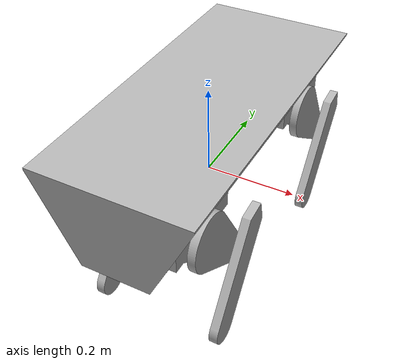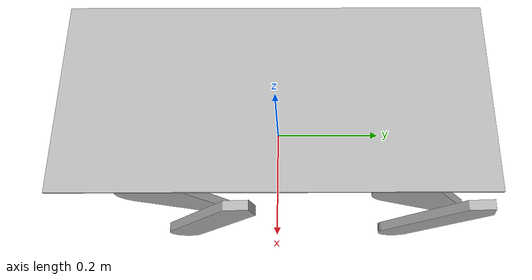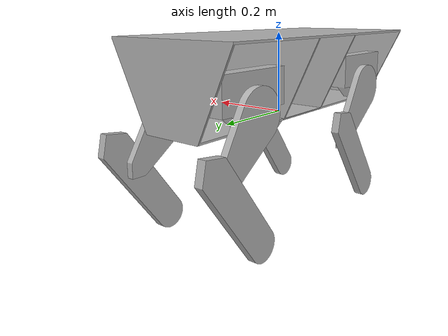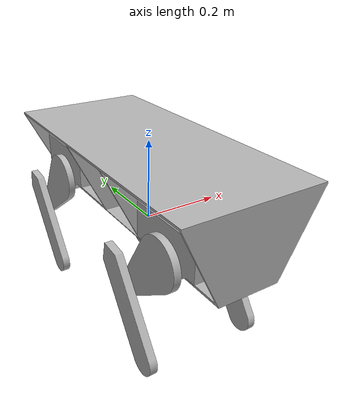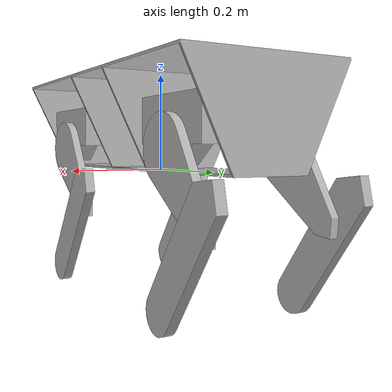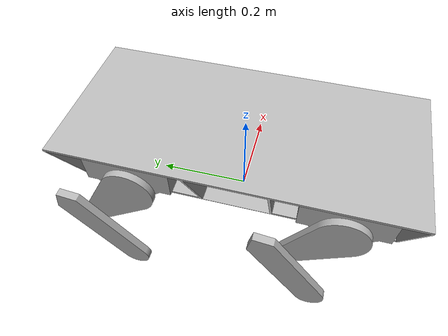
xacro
<?xml version="1.0" ?>
<robot name="cerberus"
  xmlns:xacro="http://www.ros.org/wiki/xacro">

  <xacro:include filename="$(find rne_sim2sim)/urdf/materials.xacro" />
  <xacro:include filename="$(find rne_sim2sim)/urdf/cerberus.trans"/>
  <xacro:property name="body_color" value="Gazebo/Silver" />

  <link name="base_link">
    <inertial>
      <origin xyz="7.971041120331566e-17 -1.647348498201857e-15 0.1287848920556222" rpy="0 0 0"/>
      <mass value="3.2586920943589806"/>
      <inertia ixx="0.194681" iyy="0.043046" izz="0.195704" ixy="-0.0" iyz="-0.0" ixz="0.0"/>
    </inertial>
    <visual>
      <origin xyz="0 0 0" rpy="0 0 0"/>
      <geometry>
        <mesh filename="package://rne_sim2sim/meshes/base_link.stl" scale="0.001 0.001 0.001"/>
      </geometry>
      <material name="silver"/>
    </visual>
    <collision>
      <origin xyz="0 0 0" rpy="0 0 0"/>
      <geometry>
        <mesh filename="package://rne_sim2sim/meshes/base_link.stl" scale="0.001 0.001 0.001"/>
      </geometry>
    </collision>
  </link>

  <link name="main_3_1">
    <inertial>
      <origin xyz="-0.018520826400901913 -0.11176022614571962 -0.0014865702260550423" rpy="0 0 0"/>
      <mass value="0.966314521710679"/>
      <inertia ixx="0.003774" iyy="0.001084" izz="0.002941" ixy="0.0" iyz="0.0" ixz="0.0"/>
    </inertial>
    <visual>
      <origin xyz="-0.114897 0.128 -0.085794" rpy="0 0 0"/>
      <geometry>
        <mesh filename="package://rne_sim2sim/meshes/main_3_1.stl" scale="0.001 0.001 0.001"/>
      </geometry>
      <material name="silver"/>
    </visual>
    <collision>
      <origin xyz="-0.114897 0.128 -0.085794" rpy="0 0 0"/>
      <geometry>
        <mesh filename="package://rne_sim2sim/meshes/main_3_1.stl" scale="0.001 0.001 0.001"/>
      </geometry>
    </collision>
  </link>

  <link name="main_4_1">
    <inertial>
      <origin xyz="-0.01852043750456847 0.11176022614571962 -0.0014866155824167088" rpy="0 0 0"/>
      <mass value="0.966314521710679"/>
      <inertia ixx="0.003774" iyy="0.001084" izz="0.002941" ixy="-0.0" iyz="0.0" ixz="0.0"/>
    </inertial>
    <visual>
      <origin xyz="-0.115 -0.128 -0.085785" rpy="0 0 0"/>
      <geometry>
        <mesh filename="package://rne_sim2sim/meshes/main_4_1.stl" scale="0.001 0.001 0.001"/>
      </geometry>
      <material name="silver"/>
    </visual>
    <collision>
      <origin xyz="-0.115 -0.128 -0.085785" rpy="0 0 0"/>
      <geometry>
        <mesh filename="package://rne_sim2sim/meshes/main_4_1.stl" scale="0.001 0.001 0.001"/>
      </geometry>
    </collision>
  </link>

  <link name="main_1_1">
    <inertial>
      <origin xyz="0.01852021898905626 -0.11176022614571962 -0.0014864150125114134" rpy="0 0 0"/>
      <mass value="0.966314521710679"/>
      <inertia ixx="0.003774" iyy="0.001084" izz="0.002941" ixy="-0.0" iyz="0.0" ixz="0.0"/>
    </inertial>
    <visual>
      <origin xyz="0.114204 0.128 -0.085885" rpy="0 0 0"/>
      <geometry>
        <mesh filename="package://rne_sim2sim/meshes/main_1_1.stl" scale="0.001 0.001 0.001"/>
      </geometry>
      <material name="silver"/>
    </visual>
    <collision>
      <origin xyz="0.114204 0.128 -0.085885" rpy="0 0 0"/>
      <geometry>
        <mesh filename="package://rne_sim2sim/meshes/main_1_1.stl" scale="0.001 0.001 0.001"/>
      </geometry>
    </collision>
  </link>

  <link name="main_2_1">
    <inertial>
      <origin xyz="0.018520826400901386 0.11176022614571962 -0.001486570226052808" rpy="0 0 0"/>
      <mass value="0.966314521710679"/>
      <inertia ixx="0.003774" iyy="0.001084" izz="0.002941" ixy="0.0" iyz="-0.0" ixz="0.0"/>
    </inertial>
    <visual>
      <origin xyz="0.114897 -0.128 -0.085794" rpy="0 0 0"/>
      <geometry>
        <mesh filename="package://rne_sim2sim/meshes/main_2_1.stl" scale="0.001 0.001 0.001"/>
      </geometry>
      <material name="silver"/>
    </visual>
    <collision>
      <origin xyz="0.114897 -0.128 -0.085794" rpy="0 0 0"/>
      <geometry>
        <mesh filename="package://rne_sim2sim/meshes/main_2_1.stl" scale="0.001 0.001 0.001"/>
      </geometry>
    </collision>
  </link>

  <link name="thigh_1_1">
    <inertial>
      <origin xyz="-0.008499781010944382 0.03525688250482939 -0.038167056457612855" rpy="0 0 0"/>
      <mass value="0.4047550877793264"/>
      <inertia ixx="0.00211" iyy="0.001123" izz="0.001007" ixy="0.0" iyz="0.000727" ixz="-0.0"/>
    </inertial>
    <visual>
      <origin xyz="0.115434 0.239045 -0.04464" rpy="0 0 0"/>
      <geometry>
        <mesh filename="package://rne_sim2sim/meshes/thigh_1_1.stl" scale="0.001 0.001 0.001"/>
      </geometry>
      <material name="silver"/>
    </visual>
    <collision>
      <origin xyz="0.115434 0.239045 -0.04464" rpy="0 0 0"/>
      <geometry>
        <mesh filename="package://rne_sim2sim/meshes/thigh_1_1.stl" scale="0.001 0.001 0.001"/>
      </geometry>
    </collision>
  </link>

  <link name="thigh_2_1">
    <inertial>
      <origin xyz="-0.00850017359909841 0.03494880901156763 -0.03844900713448987" rpy="0 0 0"/>
      <mass value="0.4047550877793264"/>
      <inertia ixx="0.00211" iyy="0.001134" izz="0.000995" ixy="0.0" iyz="0.000726" ixz="0.0"/>
    </inertial>
    <visual>
      <origin xyz="0.116126 -0.240476 -0.044549" rpy="0 0 0"/>
      <geometry>
        <mesh filename="package://rne_sim2sim/meshes/thigh_2_1.stl" scale="0.001 0.001 0.001"/>
      </geometry>
      <material name="silver"/>
    </visual>
    <collision>
      <origin xyz="0.116126 -0.240476 -0.044549" rpy="0 0 0"/>
      <geometry>
        <mesh filename="package://rne_sim2sim/meshes/thigh_2_1.stl" scale="0.001 0.001 0.001"/>
      </geometry>
    </collision>
  </link>

  <link name="thigh_3_1">
    <inertial>
      <origin xyz="0.008500173599098201 0.03525691569896036 -0.03816721167115657" rpy="0 0 0"/>
      <mass value="0.4047550877793264"/>
      <inertia ixx="0.00211" iyy="0.001123" izz="0.001007" ixy="-0.0" iyz="0.000727" ixz="0.0"/>
    </inertial>
    <visual>
      <origin xyz="-0.116126 0.240476 -0.044549" rpy="0 0 0"/>
      <geometry>
        <mesh filename="package://rne_sim2sim/meshes/thigh_3_1.stl" scale="0.001 0.001 0.001"/>
      </geometry>
      <material name="silver"/>
    </visual>
    <collision>
      <origin xyz="-0.116126 0.240476 -0.044549" rpy="0 0 0"/>
      <geometry>
        <mesh filename="package://rne_sim2sim/meshes/thigh_3_1.stl" scale="0.001 0.001 0.001"/>
      </geometry>
    </collision>
  </link>

  <link name="thigh_4_1">
    <inertial>
      <origin xyz="0.00849956249543124 0.035256367990399606 -0.038167257027518185" rpy="0 0 0"/>
      <mass value="0.4047550877793264"/>
      <inertia ixx="0.00211" iyy="0.001123" izz="0.001007" ixy="-0.0" iyz="0.000727" ixz="0.0"/>
    </inertial>
    <visual>
      <origin xyz="-0.11623 -0.239045 -0.04454" rpy="0 0 0"/>
      <geometry>
        <mesh filename="package://rne_sim2sim/meshes/thigh_4_1.stl" scale="0.001 0.001 0.001"/>
      </geometry>
      <material name="silver"/>
    </visual>
    <collision>
      <origin xyz="-0.11623 -0.239045 -0.04454" rpy="0 0 0"/>
      <geometry>
        <mesh filename="package://rne_sim2sim/meshes/thigh_4_1.stl" scale="0.001 0.001 0.001"/>
      </geometry>
    </collision>
  </link>

  <link name="calf_4_1">
    <inertial>
      <origin xyz="0.009999562495431324 -0.030919784033148934 -0.044157569948123046" rpy="0 0 0"/>
      <mass value="0.46167533436267855"/>
      <inertia ixx="0.003503" iyy="0.002296" izz="0.001237" ixy="-0.0" iyz="-0.001454" ixz="0.0"/>
    </inertial>
    <visual>
      <origin xyz="-0.13323 -0.360558 0.086599" rpy="0 0 0"/>
      <geometry>
        <mesh filename="package://rne_sim2sim/meshes/calf_4_1.stl" scale="0.001 0.001 0.001"/>
      </geometry>
      <material name="silver"/>
    </visual>
    <collision>
      <origin xyz="-0.13323 -0.360558 0.086599" rpy="0 0 0"/>
      <geometry>
        <mesh filename="package://rne_sim2sim/meshes/calf_4_1.stl" scale="0.001 0.001 0.001"/>
      </geometry>
    </collision>
  </link>

  <link name="calf_3_1">
    <inertial>
      <origin xyz="0.010000173599098244 -0.030919236324588026 -0.04415752459176139" rpy="0 0 0"/>
      <mass value="0.46167533436267855"/>
      <inertia ixx="0.003503" iyy="0.002296" izz="0.001237" ixy="0.0" iyz="-0.001454" ixz="0.0"/>
    </inertial>
    <visual>
      <origin xyz="-0.133126 0.118963 0.08659" rpy="0 0 0"/>
      <geometry>
        <mesh filename="package://rne_sim2sim/meshes/calf_3_1.stl" scale="0.001 0.001 0.001"/>
      </geometry>
      <material name="silver"/>
    </visual>
    <collision>
      <origin xyz="-0.133126 0.118963 0.08659" rpy="0 0 0"/>
      <geometry>
        <mesh filename="package://rne_sim2sim/meshes/calf_3_1.stl" scale="0.001 0.001 0.001"/>
      </geometry>
    </collision>
  </link>

  <link name="calf_1_1">
    <inertial>
      <origin xyz="-0.009999781010946979 -0.030919269518657894 -0.044157369378260244" rpy="0 0 0"/>
      <mass value="0.46167533436267855"/>
      <inertia ixx="0.003503" iyy="0.002296" izz="0.001237" ixy="-0.0" iyz="-0.001454" ixz="-0.0"/>
    </inertial>
    <visual>
      <origin xyz="0.132434 0.117532 0.086499" rpy="0 0 0"/>
      <geometry>
        <mesh filename="package://rne_sim2sim/meshes/calf_1_1.stl" scale="0.001 0.001 0.001"/>
      </geometry>
      <material name="silver"/>
    </visual>
    <collision>
      <origin xyz="0.132434 0.117532 0.086499" rpy="0 0 0"/>
      <geometry>
        <mesh filename="package://rne_sim2sim/meshes/calf_1_1.stl" scale="0.001 0.001 0.001"/>
      </geometry>
    </collision>
  </link>

  <link name="calf_2_1">
    <inertial>
      <origin xyz="-0.010000173599098078 -0.030919643170087607 -0.04415787393658817" rpy="0 0 0"/>
      <mass value="0.46167533436267855"/>
      <inertia ixx="0.003503" iyy="0.002296" izz="0.001237" ixy="-0.0" iyz="-0.001454" ixz="0.0"/>
    </inertial>
    <visual>
      <origin xyz="0.133126 -0.360525 0.087931" rpy="0 0 0"/>
      <geometry>
        <mesh filename="package://rne_sim2sim/meshes/calf_2_1.stl" scale="0.001 0.001 0.001"/>
      </geometry>
      <material name="silver"/>
    </visual>
    <collision>
      <origin xyz="0.133126 -0.360525 0.087931" rpy="0 0 0"/>
      <geometry>
        <mesh filename="package://rne_sim2sim/meshes/calf_2_1.stl" scale="0.001 0.001 0.001"/>
      </geometry>
    </collision>
  </link>

  <joint name="haa_3" type="revolute">
    <origin xyz="0.114897 -0.128 0.085794" rpy="0 0 0"/>
    <parent link="base_link"/>
    <child link="main_3_1"/>
    <axis xyz="0.0 -1.0 0.0"/>
    <limit
      lower="-3.14"
      upper="3.14"
      effort="14"
      velocity="7"
    />
  </joint>

  <joint name="haa_4" type="revolute">
    <origin xyz="0.115 0.128 0.085785" rpy="0 0 0"/>
    <parent link="base_link"/>
    <child link="main_4_1"/>
    <axis xyz="0.0 1.0 0.0"/>
    <limit
      lower="-3.14"
      upper="3.14"
      effort="14"
      velocity="7"
    />
  </joint>

  <joint name="haa_1" type="revolute">
    <origin xyz="-0.114204 -0.128 0.085885" rpy="0 0 0"/>
    <parent link="base_link"/>
    <child link="main_1_1"/>
    <axis xyz="0.0 -1.0 0.0"/>
    <limit
      lower="-3.14"
      upper="3.14"
      effort="14"
      velocity="7"
    />
  </joint>

  <joint name="haa_2" type="revolute">
    <origin xyz="-0.114897 0.128 0.085794" rpy="0 0 0"/>
    <parent link="base_link"/>
    <child link="main_2_1"/>
    <axis xyz="0.0 1.0 0.0"/>
    <limit
      lower="-3.14"
      upper="3.14"
      effort="14"
      velocity="7"
    />
  </joint>

  <joint name="hfe_1" type="revolute">
    <origin xyz="-0.00123 -0.111045 -0.041245" rpy="0 0 0"/>
    <parent link="main_1_1"/>
    <child link="thigh_1_1"/>
    <axis xyz="-1.0 0.0 -0.0"/>
    <limit
      lower="-3.14"
      upper="3.14"
      effort="14"
      velocity="7"
    />
  </joint>

  <joint name="hfe_2" type="revolute">
    <origin xyz="-0.001229 0.112476 -0.041245" rpy="0 0 0"/>
    <parent link="main_2_1"/>
    <child link="thigh_2_1"/>
    <axis xyz="-1.0 0.0 -0.0"/>
    <limit
      lower="-3.14"
      upper="3.14"
      effort="14"
      velocity="7"
    />
  </joint>

  <joint name="hfe_3" type="revolute">
    <origin xyz="0.001229 -0.112476 -0.041245" rpy="0 0 0"/>
    <parent link="main_3_1"/>
    <child link="thigh_3_1"/>
    <axis xyz="1.0 0.0 0.0"/>
    <limit
      lower="-3.14"
      upper="3.14"
      effort="14"
      velocity="7"
    />
  </joint>

  <joint name="hfe_4" type="revolute">
    <origin xyz="0.00123 0.111045 -0.041245" rpy="0 0 0"/>
    <parent link="main_4_1"/>
    <child link="thigh_4_1"/>
    <axis xyz="1.0 0.0 0.0"/>
    <limit
      lower="-3.14"
      upper="3.14"
      effort="14"
      velocity="7"
    />
  </joint>

  <joint name="kfe_4" type="revolute">
    <origin xyz="0.017 0.121513 -0.131139" rpy="0 0 0"/>
    <parent link="thigh_4_1"/>
    <child link="calf_4_1"/>
    <axis xyz="1.0 0.0 0.0"/>
    <limit
      lower="-3.14"
      upper="3.14"
      effort="14"
      velocity="7"
    />
  </joint>

  <joint name="kfe_3" type="revolute">
    <origin xyz="0.017 0.121513 -0.131139" rpy="0 0 0"/>
    <parent link="thigh_3_1"/>
    <child link="calf_3_1"/>
    <axis xyz="1.0 0.0 0.0"/>
    <limit
      lower="-3.14"
      upper="3.14"
      effort="14"
      velocity="7"
    />
  </joint>

  <joint name="kfe_1" type="revolute">
    <origin xyz="-0.017 0.121513 -0.131139" rpy="0 0 0"/>
    <parent link="thigh_1_1"/>
    <child link="calf_1_1"/>
    <axis xyz="-1.0 0.0 0.0"/>
    <limit
      lower="-3.14"
      upper="3.14"
      effort="14"
      velocity="7"
    />
  </joint>

  <joint name="kfe_2" type="revolute">
    <origin xyz="-0.017 0.120049 -0.13248" rpy="0 0 0"/>
    <parent link="thigh_2_1"/>
    <child link="calf_2_1"/>
    <axis xyz="-1.0 0.0 -0.0"/>
    <limit
      lower="-3.14"
      upper="3.14"
      effort="14"
      velocity="7"
    />
  </joint>

  <ros2_control name="GazeboSystem" type="system">
    <hardware>
      <plugin>gazebo_ros2_control/GazeboSystem</plugin>
    </hardware>
    <joint name="haa_1">
      <command_interface name="effort">
      </command_interface>
      <state_interface name="position"/>
      <state_interface name="velocity"/>
    </joint>
    <joint name="hfe_1">
      <command_interface name="effort">
      </command_interface>
      <state_interface name="position"/>
      <state_interface name="velocity"/>
    </joint>
    <joint name="kfe_1">
      <command_interface name="effort">
      </command_interface>
      <state_interface name="position"/>
      <state_interface name="velocity"/>
    </joint>
    <joint name="haa_2">
      <command_interface name="effort">
      </command_interface>
      <state_interface name="position"/>
      <state_interface name="velocity"/>
    </joint>
    <joint name="hfe_2">
      <command_interface name="effort">
      </command_interface>
      <state_interface name="position"/>
      <state_interface name="velocity"/>
    </joint>
    <joint name="kfe_2">
      <command_interface name="effort">
      </command_interface>
      <state_interface name="position"/>
      <state_interface name="velocity"/>
    </joint>
    <joint name="haa_3">
      <command_interface name="effort">
      </command_interface>
      <state_interface name="position"/>
      <state_interface name="velocity"/>
    </joint>
    <joint name="hfe_3">
      <command_interface name="effort">
      </command_interface>
      <state_interface name="position"/>
      <state_interface name="velocity"/>
    </joint>
    <joint name="kfe_3">
      <command_interface name="effort">
      </command_interface>
      <state_interface name="position"/>
      <state_interface name="velocity"/>
    </joint>
    <joint name="haa_4">
      <command_interface name="effort">
      </command_interface>
      <state_interface name="position"/>
      <state_interface name="velocity"/>
    </joint>
    <joint name="hfe_4">
      <command_interface name="effort">
      </command_interface>
      <state_interface name="position"/>
      <state_interface name="velocity"/>
    </joint>
    <joint name="kfe_4">
      <command_interface name="effort">
      </command_interface>
      <state_interface name="position"/>
      <state_interface name="velocity"/>
    </joint>
  </ros2_control>
  <gazebo>
    <plugin name="gazebo_ros2_control" filename="libgazebo_ros2_control.so">
      <!-- robotNamespace는 컨트롤러와 토픽의 접두사를 설정합니다. -->
      <robot_namespace>/</robot_namespace>
      <!-- 컨트롤러 설정 파일의 경로를 여기에 직접 지정할 수도 있습니다. -->
      <parameters>$(find rne_sim2sim)/config/controllers.yaml</parameters>
    </plugin>
  </gazebo>

  <!-- Odometry 발행 플러그인 (p3d) -->
  <gazebo>
    <plugin name="p3d_base_controller" filename="libgazebo_ros_p3d.so">
      <body_name>base_link</body_name>
      <frame_name>world</frame_name>
      <update_rate>50</update_rate>
      <topic_name>odom/data</topic_name>
    </plugin>
  </gazebo>
  <gazebo reference="base_link">
    <material>${body_color}</material>
    <mu1>1</mu1>
    <mu2>1</mu2>
    <selfCollide>false</selfCollide>
    <gravity>true</gravity>
    <kinematic>false</kinematic>
  </gazebo>

  <gazebo reference="main_3_1">
    <material>${body_color}</material>
    <mu1>1</mu1>
    <mu2>1</mu2>
    <selfCollide>false</selfCollide>
  </gazebo>

  <gazebo reference="main_4_1">
    <material>${body_color}</material>
    <mu1>1</mu1>
    <mu2>1</mu2>
    <selfCollide>false</selfCollide>
  </gazebo>

  <gazebo reference="main_1_1">
    <material>${body_color}</material>
    <mu1>1</mu1>
    <mu2>1</mu2>
    <selfCollide>false</selfCollide>
  </gazebo>

  <gazebo reference="main_2_1">
    <material>${body_color}</material>
    <mu1>1</mu1>
    <mu2>1</mu2>
    <selfCollide>false</selfCollide>
  </gazebo>

  <gazebo reference="thigh_1_1">
    <material>${body_color}</material>
    <mu1>1</mu1>
    <mu2>1</mu2>
    <selfCollide>false</selfCollide>
  </gazebo>

  <gazebo reference="thigh_2_1">
    <material>${body_color}</material>
    <mu1>1</mu1>
    <mu2>1</mu2>
    <selfCollide>false</selfCollide>
  </gazebo>

  <gazebo reference="thigh_3_1">
    <material>${body_color}</material>
    <mu1>1</mu1>
    <mu2>1</mu2>
    <selfCollide>false</selfCollide>
  </gazebo>

  <gazebo reference="thigh_4_1">
    <material>${body_color}</material>
    <mu1>1</mu1>
    <mu2>1</mu2>
    <selfCollide>false</selfCollide>
  </gazebo>

  <gazebo reference="calf_4_1">
    <material>${body_color}</material>
    <mu1>1</mu1>
    <mu2>1</mu2>
    <selfCollide>false</selfCollide>
  </gazebo>

  <gazebo reference="calf_3_1">
    <material>${body_color}</material>
    <mu1>1</mu1>
    <mu2>1</mu2>
    <selfCollide>false</selfCollide>
  </gazebo>

  <gazebo reference="calf_1_1">
    <material>${body_color}</material>
    <mu1>1</mu1>
    <mu2>1</mu2>
    <selfCollide>false</selfCollide>
  </gazebo>

  <gazebo reference="calf_2_1">
    <material>${body_color}</material>
    <mu1>1</mu1>
    <mu2>1</mu2>
    <selfCollide>false</selfCollide>
  </gazebo>
</robot>

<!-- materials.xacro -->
<robot name="cerberus" xmlns:xacro="http://www.ros.org/wiki/xacro" >

<material name="silver">
  <color rgba="0.700 0.700 0.700 1.000"/>
</material>

</robot>
